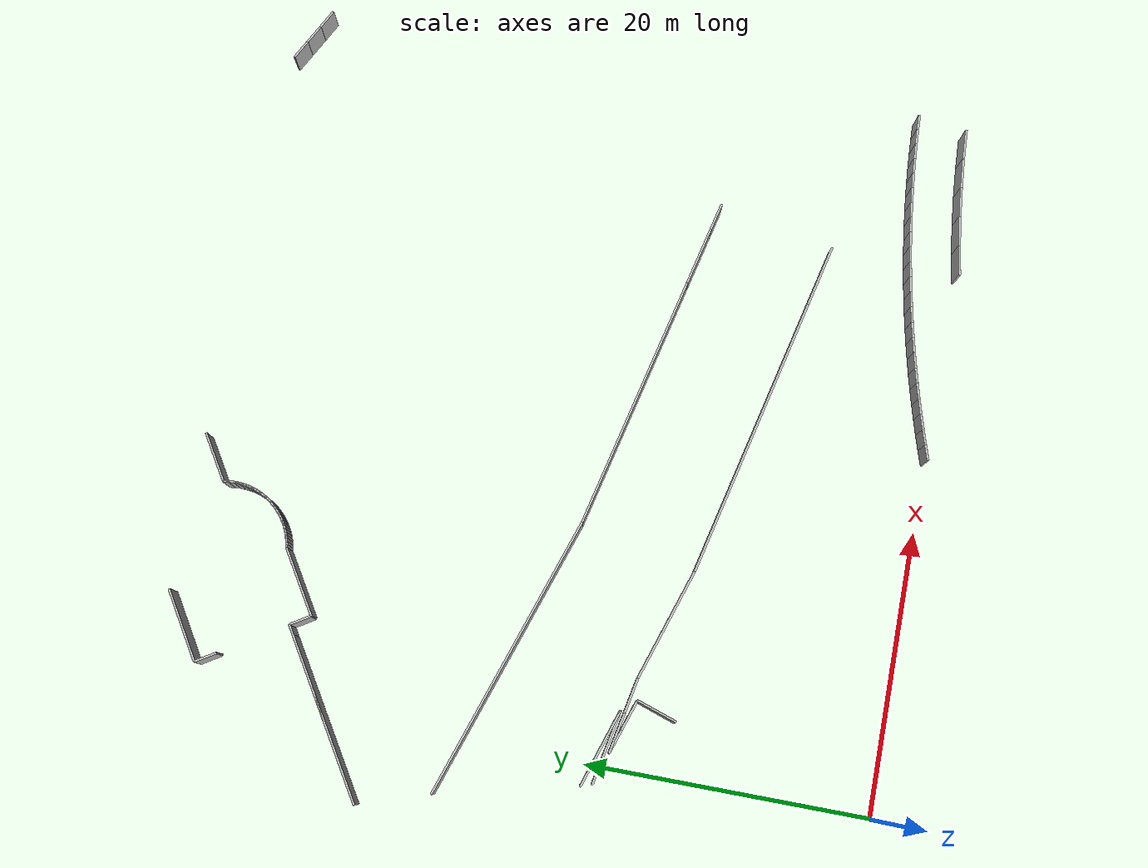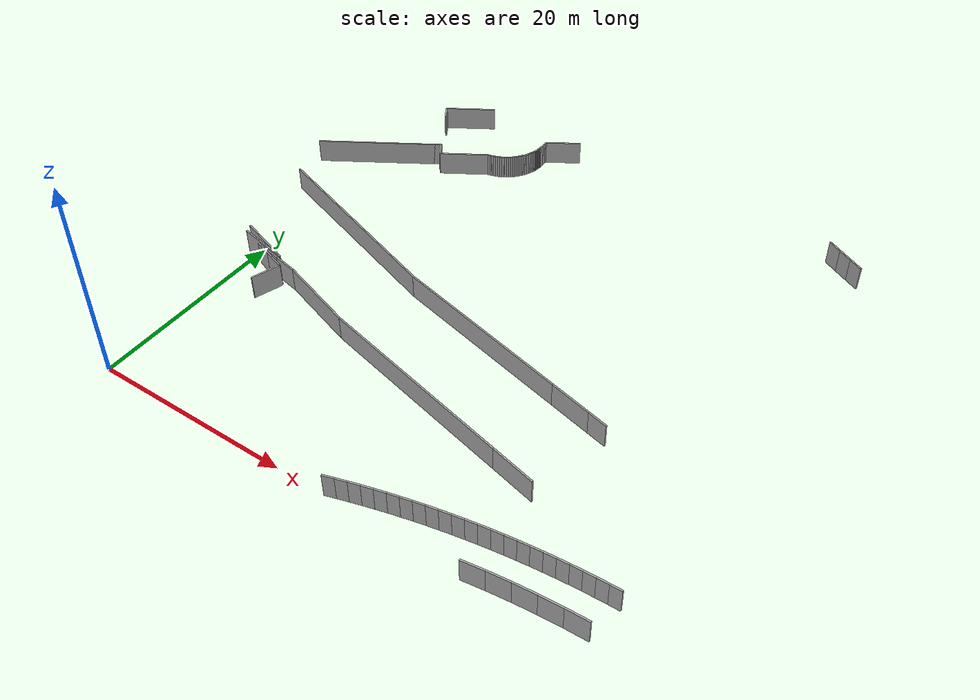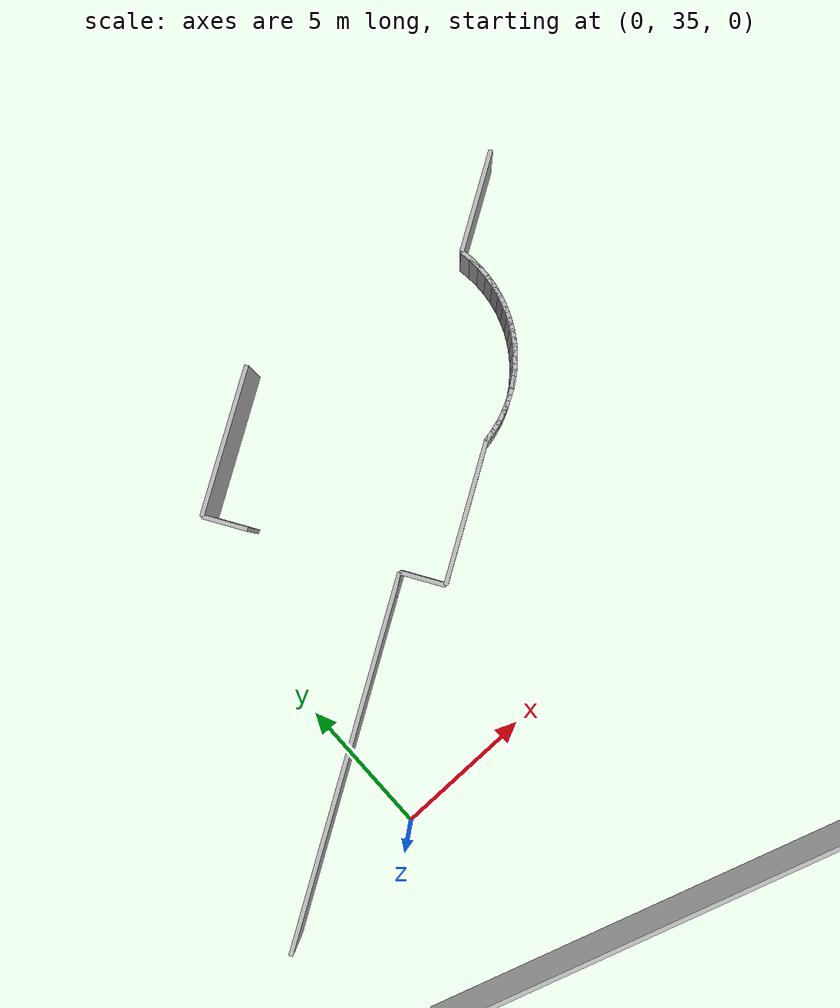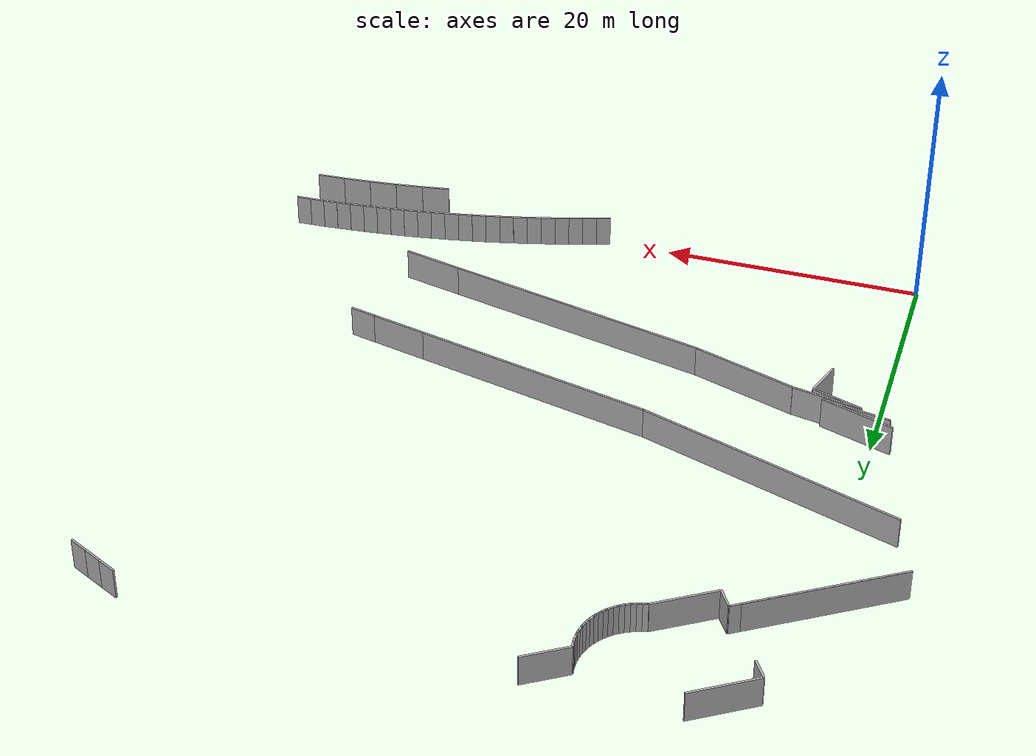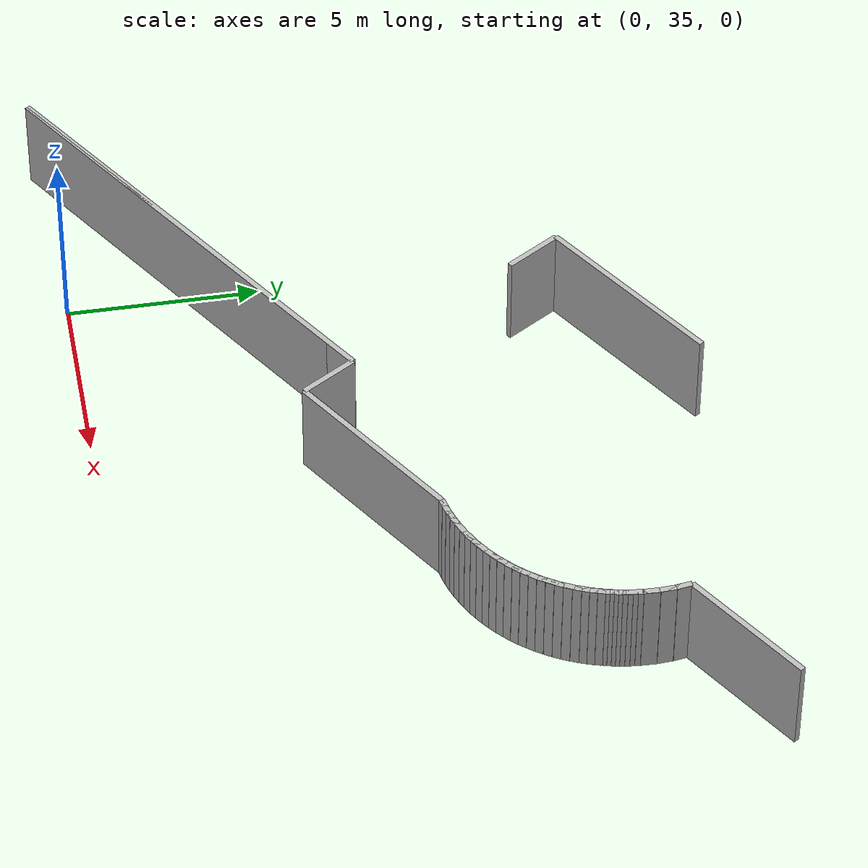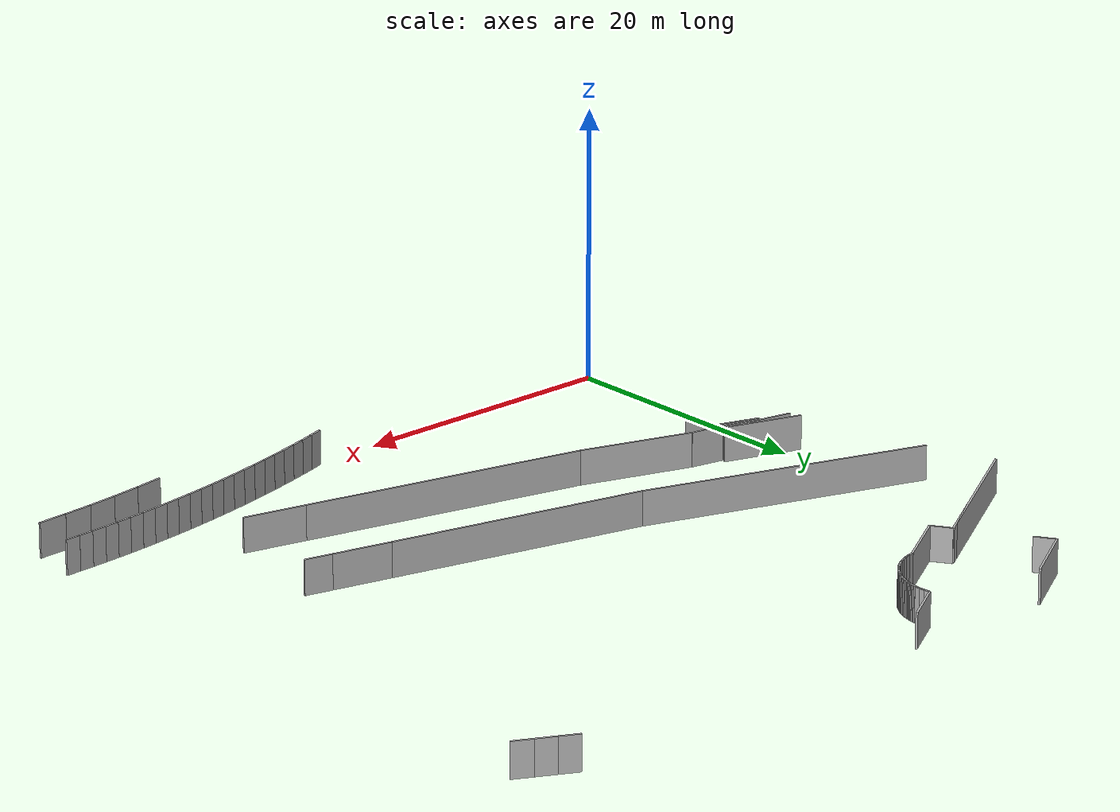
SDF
<sdf version="1.6">
 <model name="sps_1305">
  <static>1</static>
  <allow_auto_disable>0</allow_auto_disable>
  <link name="Wall187">
   <collision name="collision"><geometry><box><size>5.337 0.15 2.5</size></box></geometry></collision>
   <visual name="visual">
    <geometry><box><size>5.337 0.15 2.5</size></box></geometry>
    <transparency>0.0</transparency>
   </visual>
   <pose>1.42776 18.6879 1.25 0 0 -0.19276</pose>
  </link>
  <link name="Wall188">
   <collision name="collision"><geometry><box><size>5.80805 0.15 2.5</size></box></geometry></collision>
   <visual name="visual">
    <geometry><box><size>5.80805 0.15 2.5</size></box></geometry>
    <transparency>0.0</transparency>
   </visual>
   <pose>1.28585 19.0769 1.25 0 0 -0.315167</pose>
  </link>
  <link name="Wall343">
   <collision name="collision"><geometry><box><size>3.00012 0.15 2.5</size></box></geometry></collision>
   <visual name="visual">
    <geometry><box><size>3.00012 0.15 2.5</size></box></geometry>
    <transparency>0.0</transparency>
   </visual>
   <pose>4.43886 15.7577 1.25 0 0 -1.89019</pose>
  </link>
  <link name="Wall344">
   <collision name="collision"><geometry><box><size>1.78351 0.15 2.5</size></box></geometry></collision>
   <visual name="visual">
    <geometry><box><size>1.78351 0.15 2.5</size></box></geometry>
    <transparency>0.0</transparency>
   </visual>
   <pose>1.91195 18.173 1.25 0 0 -0.319281</pose>
  </link>
  <link name="Wall345">
   <collision name="collision"><geometry><box><size>2.26574 0.15 2.5</size></box></geometry></collision>
   <visual name="visual">
    <geometry><box><size>2.26574 0.15 2.5</size></box></geometry>
    <transparency>0.0</transparency>
   </visual>
   <pose>3.83426 17.5375 1.25 0 0 -0.319281</pose>
  </link>
  <link name="Wall425">
   <collision name="collision"><geometry><box><size>2.92208 0.15 2.5</size></box></geometry></collision>
   <visual name="visual">
    <geometry><box><size>2.92208 0.15 2.5</size></box></geometry>
    <transparency>0.0</transparency>
   </visual>
   <pose>2.49924 18.173 1.25 0 0 -0.192773</pose>
  </link>
  <link name="Wall426">
   <collision name="collision"><geometry><box><size>2.49485 0.15 2.5</size></box></geometry></collision>
   <visual name="visual">
    <geometry><box><size>2.49485 0.15 2.5</size></box></geometry>
    <transparency>0.0</transparency>
   </visual>
   <pose>5.15754 17.6541 1.25 0 0 -0.192773</pose>
  </link>
  <link name="Wall517">
   <collision name="collision"><geometry><box><size>13.0031 0.15 2.5</size></box></geometry></collision>
   <visual name="visual">
    <geometry><box><size>13.0031 0.15 2.5</size></box></geometry>
    <transparency>0.0</transparency>
   </visual>
   <pose>0.0686563 38.1576 1.25 0 0 -2.58425</pose>
  </link>
  <link name="Wall518">
   <collision name="collision"><geometry><box><size>21.0684 0.15 2.5</size></box></geometry></collision>
   <visual name="visual">
    <geometry><box><size>21.0684 0.15 2.5</size></box></geometry>
    <transparency>0.0</transparency>
   </visual>
   <pose>6.20898 26.4408 1.25 0 -0 2.82071</pose>
  </link>
  <link name="Wall519">
   <collision name="collision"><geometry><box><size>20.7242 0.15 2.5</size></box></geometry></collision>
   <visual name="visual">
    <geometry><box><size>20.7242 0.15 2.5</size></box></geometry>
    <transparency>0.0</transparency>
   </visual>
   <pose>24.3761 12.4944 1.25 0 0 -0.22823</pose>
  </link>
  <link name="Wall520">
   <collision name="collision"><geometry><box><size>4.60319 0.15 2.5</size></box></geometry></collision>
   <visual name="visual">
    <geometry><box><size>4.60319 0.15 2.5</size></box></geometry>
    <transparency>0.0</transparency>
   </visual>
   <pose>36.7114 9.62922 1.25 0 0 -0.22823</pose>
  </link>
  <link name="Wall598">
   <collision name="collision"><geometry><box><size>8.31023 0.15 2.5</size></box></geometry></collision>
   <visual name="visual">
    <geometry><box><size>8.31023 0.15 2.5</size></box></geometry>
    <transparency>0.0</transparency>
   </visual>
   <pose>10.3323 16.127 1.25 0 0 -0.315201</pose>
  </link>
  <link name="Wall602">
   <collision name="collision"><geometry><box><size>2.02963 0.15 2.5</size></box></geometry></collision>
   <visual name="visual">
    <geometry><box><size>2.02963 0.15 2.5</size></box></geometry>
    <transparency>0.0</transparency>
   </visual>
   <pose>39.6792 17.6634 1.25 0 -0 2.91326</pose>
  </link>
  <link name="Wall603">
   <collision name="collision"><geometry><box><size>4.33377 0.15 2.5</size></box></geometry></collision>
   <visual name="visual">
    <geometry><box><size>4.33377 0.15 2.5</size></box></geometry>
    <transparency>0.0</transparency>
   </visual>
   <pose>36.5801 18.3836 1.25 0 -0 2.91326</pose>
  </link>
  <link name="Wall604">
   <collision name="collision"><geometry><box><size>18.7506 0.15 2.5</size></box></geometry></collision>
   <visual name="visual">
    <geometry><box><size>18.7506 0.15 2.5</size></box></geometry>
    <transparency>0.0</transparency>
   </visual>
   <pose>25.3375 20.9962 1.25 0 -0 2.91326</pose>
  </link>
  <link name="Wall1678">
   <collision name="collision"><geometry><box><size>1.11043 0.15 2.5</size></box></geometry></collision>
   <visual name="visual">
    <geometry><box><size>1.11043 0.15 2.5</size></box></geometry>
    <transparency>0.0</transparency>
   </visual>
   <pose>25.4339 0.295699 1.25 0 -0 0.308558</pose>
  </link>
  <link name="Wall1679">
   <collision name="collision"><geometry><box><size>1.11057 0.15 2.5</size></box></geometry></collision>
   <visual name="visual">
    <geometry><box><size>1.11057 0.15 2.5</size></box></geometry>
    <transparency>0.0</transparency>
   </visual>
   <pose>26.494 0.626113 1.25 0 -0 0.295679</pose>
  </link>
  <link name="Wall1680">
   <collision name="collision"><geometry><box><size>1.11043 0.15 2.5</size></box></geometry></collision>
   <visual name="visual">
    <geometry><box><size>1.11043 0.15 2.5</size></box></geometry>
    <transparency>0.0</transparency>
   </visual>
   <pose>27.5583 0.943007 1.25 0 -0 0.283102</pose>
  </link>
  <link name="Wall1681">
   <collision name="collision"><geometry><box><size>1.11052 0.15 2.5</size></box></geometry></collision>
   <visual name="visual">
    <geometry><box><size>1.11052 0.15 2.5</size></box></geometry>
    <transparency>0.0</transparency>
   </visual>
   <pose>28.6265 1.24638 1.25 0 -0 0.270335</pose>
  </link>
  <link name="Wall1682">
   <collision name="collision"><geometry><box><size>1.1104 0.15 2.5</size></box></geometry></collision>
   <visual name="visual">
    <geometry><box><size>1.1104 0.15 2.5</size></box></geometry>
    <transparency>0.0</transparency>
   </visual>
   <pose>29.6984 1.53639 1.25 0 -0 0.258124</pose>
  </link>
  <link name="Wall1683">
   <collision name="collision"><geometry><box><size>1.11048 0.15 2.5</size></box></geometry></collision>
   <visual name="visual">
    <geometry><box><size>1.11048 0.15 2.5</size></box></geometry>
    <transparency>0.0</transparency>
   </visual>
   <pose>30.7739 1.813 1.25 0 -0 0.245392</pose>
  </link>
  <link name="Wall1684">
   <collision name="collision"><geometry><box><size>1.11053 0.15 2.5</size></box></geometry></collision>
   <visual name="visual">
    <geometry><box><size>1.11053 0.15 2.5</size></box></geometry>
    <transparency>0.0</transparency>
   </visual>
   <pose>31.8527 2.076 1.25 0 -0 0.232822</pose>
  </link>
  <link name="Wall1685">
   <collision name="collision"><geometry><box><size>1.11057 0.15 2.5</size></box></geometry></collision>
   <visual name="visual">
    <geometry><box><size>1.11057 0.15 2.5</size></box></geometry>
    <transparency>0.0</transparency>
   </visual>
   <pose>32.9349 2.3253 1.25 0 -0 0.22001</pose>
  </link>
  <link name="Wall1686">
   <collision name="collision"><geometry><box><size>1.11039 0.15 2.5</size></box></geometry></collision>
   <visual name="visual">
    <geometry><box><size>1.11039 0.15 2.5</size></box></geometry>
    <transparency>0.0</transparency>
   </visual>
   <pose>34.0201 2.56077 1.25 0 -0 0.207335</pose>
  </link>
  <link name="Wall1687">
   <collision name="collision"><geometry><box><size>1.1104 0.15 2.5</size></box></geometry></collision>
   <visual name="visual">
    <geometry><box><size>1.1104 0.15 2.5</size></box></geometry>
    <transparency>0.0</transparency>
   </visual>
   <pose>35.1081 2.78248 1.25 0 -0 0.194711</pose>
  </link>
  <link name="Wall1688">
   <collision name="collision"><geometry><box><size>1.1106 0.15 2.5</size></box></geometry></collision>
   <visual name="visual">
    <geometry><box><size>1.1106 0.15 2.5</size></box></geometry>
    <transparency>0.0</transparency>
   </visual>
   <pose>36.199 2.99049 1.25 0 -0 0.182144</pose>
  </link>
  <link name="Wall1689">
   <collision name="collision"><geometry><box><size>1.1103 0.15 2.5</size></box></geometry></collision>
   <visual name="visual">
    <geometry><box><size>1.1103 0.15 2.5</size></box></geometry>
    <transparency>0.0</transparency>
   </visual>
   <pose>37.2923 3.1848 1.25 0 -0 0.169631</pose>
  </link>
  <link name="Wall1690">
   <collision name="collision"><geometry><box><size>1.11072 0.15 2.5</size></box></geometry></collision>
   <visual name="visual">
    <geometry><box><size>1.11072 0.15 2.5</size></box></geometry>
    <transparency>0.0</transparency>
   </visual>
   <pose>38.388 3.3654 1.25 0 -0 0.15709</pose>
  </link>
  <link name="Wall1691">
   <collision name="collision"><geometry><box><size>1.11053 0.15 2.5</size></box></geometry></collision>
   <visual name="visual">
    <geometry><box><size>1.11053 0.15 2.5</size></box></geometry>
    <transparency>0.0</transparency>
   </visual>
   <pose>39.486 3.53209 1.25 0 -0 0.144221</pose>
  </link>
  <link name="Wall1692">
   <collision name="collision"><geometry><box><size>1.11054 0.15 2.5</size></box></geometry></collision>
   <visual name="visual">
    <geometry><box><size>1.11054 0.15 2.5</size></box></geometry>
    <transparency>0.0</transparency>
   </visual>
   <pose>40.586 3.68471 1.25 0 -0 0.131513</pose>
  </link>
  <link name="Wall1693">
   <collision name="collision"><geometry><box><size>1.11042 0.15 2.5</size></box></geometry></collision>
   <visual name="visual">
    <geometry><box><size>1.11042 0.15 2.5</size></box></geometry>
    <transparency>0.0</transparency>
   </visual>
   <pose>41.6877 3.82332 1.25 0 -0 0.118785</pose>
  </link>
  <link name="Wall1694">
   <collision name="collision"><geometry><box><size>1.11029 0.15 2.5</size></box></geometry></collision>
   <visual name="visual">
    <geometry><box><size>1.11029 0.15 2.5</size></box></geometry>
    <transparency>0.0</transparency>
   </visual>
   <pose>42.791 3.9481 1.25 0 -0 0.106462</pose>
  </link>
  <link name="Wall1695">
   <collision name="collision"><geometry><box><size>1.11049 0.15 2.5</size></box></geometry></collision>
   <visual name="visual">
    <geometry><box><size>1.11049 0.15 2.5</size></box></geometry>
    <transparency>0.0</transparency>
   </visual>
   <pose>43.8958 4.05919 1.25 0 -0 0.093959</pose>
  </link>
  <link name="Wall1696">
   <collision name="collision"><geometry><box><size>1.11048 0.15 2.5</size></box></geometry></collision>
   <visual name="visual">
    <geometry><box><size>1.11048 0.15 2.5</size></box></geometry>
    <transparency>0.0</transparency>
   </visual>
   <pose>45.002 4.15639 1.25 0 -0 0.0813246</pose>
  </link>
  <link name="Wall1697">
   <collision name="collision"><geometry><box><size>1.11063 0.15 2.5</size></box></geometry></collision>
   <visual name="visual">
    <geometry><box><size>1.11063 0.15 2.5</size></box></geometry>
    <transparency>0.0</transparency>
   </visual>
   <pose>46.1095 4.23949 1.25 0 -0 0.0684727</pose>
  </link>
  <link name="Wall1698">
   <collision name="collision"><geometry><box><size>1.1105 0.15 2.5</size></box></geometry></collision>
   <visual name="visual">
    <geometry><box><size>1.1105 0.15 2.5</size></box></geometry>
    <transparency>0.0</transparency>
   </visual>
   <pose>47.2179 4.30849 1.25 0 -0 0.0558705</pose>
  </link>
  <link name="Wall1699">
   <collision name="collision"><geometry><box><size>1.11046 0.15 2.5</size></box></geometry></collision>
   <visual name="visual">
    <geometry><box><size>1.11046 0.15 2.5</size></box></geometry>
    <transparency>0.0</transparency>
   </visual>
   <pose>48.327 4.36339 1.25 0 -0 0.0430498</pose>
  </link>
  <link name="Wall1700">
   <collision name="collision"><geometry><box><size>1.11051 0.15 2.5</size></box></geometry></collision>
   <visual name="visual">
    <geometry><box><size>1.11051 0.15 2.5</size></box></geometry>
    <transparency>0.0</transparency>
   </visual>
   <pose>49.4367 4.40428 1.25 0 -0 0.0306184</pose>
  </link>
  <link name="Wall1731">
   <collision name="collision"><geometry><box><size>2.18192 0.15 2.5</size></box></geometry></collision>
   <visual name="visual">
    <geometry><box><size>2.18192 0.15 2.5</size></box></geometry>
    <transparency>0.0</transparency>
   </visual>
   <pose>48.3574 0.855788 1.25 0 0 -3.09693</pose>
  </link>
  <link name="Wall1732">
   <collision name="collision"><geometry><box><size>2.18188 0.15 2.5</size></box></geometry></collision>
   <visual name="visual">
    <geometry><box><size>2.18188 0.15 2.5</size></box></geometry>
    <transparency>0.0</transparency>
   </visual>
   <pose>46.1793 0.730178 1.25 0 0 -3.07104</pose>
  </link>
  <link name="Wall1733">
   <collision name="collision"><geometry><box><size>2.18212 0.15 2.5</size></box></geometry></collision>
   <visual name="visual">
    <geometry><box><size>2.18212 0.15 2.5</size></box></geometry>
    <transparency>0.0</transparency>
   </visual>
   <pose>44.005 0.548293 1.25 0 0 -3.04522</pose>
  </link>
  <link name="Wall1734">
   <collision name="collision"><geometry><box><size>2.18186 0.15 2.5</size></box></geometry></collision>
   <visual name="visual">
    <geometry><box><size>2.18186 0.15 2.5</size></box></geometry>
    <transparency>0.0</transparency>
   </visual>
   <pose>41.8362 0.310317 1.25 0 0 -3.01938</pose>
  </link>
  <link name="Wall1735">
   <collision name="collision"><geometry><box><size>2.18185 0.15 2.5</size></box></geometry></collision>
   <visual name="visual">
    <geometry><box><size>2.18185 0.15 2.5</size></box></geometry>
    <transparency>0.0</transparency>
   </visual>
   <pose>39.6745 0.0163106 1.25 0 0 -2.99346</pose>
  </link>
  <link name="Wall2435">
   <collision name="collision"><geometry><box><size>3.66863 0.15 2.5</size></box></geometry></collision>
   <visual name="visual">
    <geometry><box><size>3.66863 0.15 2.5</size></box></geometry>
    <transparency>0.0</transparency>
   </visual>
   <pose>16.025 49.2194 1.25 0 0 -2.58446</pose>
  </link>
  <link name="Wall2436">
   <collision name="collision"><geometry><box><size>0.397523 0.15 2.5</size></box></geometry></collision>
   <visual name="visual">
    <geometry><box><size>0.397523 0.15 2.5</size></box></geometry>
    <transparency>0.0</transparency>
   </visual>
   <pose>14.4961 48.0527 1.25 0 0 -1.42938</pose>
  </link>
  <link name="Wall2437">
   <collision name="collision"><geometry><box><size>0.397598 0.15 2.5</size></box></geometry></collision>
   <visual name="visual">
    <geometry><box><size>0.397598 0.15 2.5</size></box></geometry>
    <transparency>0.0</transparency>
   </visual>
   <pose>14.5347 47.6574 1.25 0 0 -1.5175</pose>
  </link>
  <link name="Wall2438">
   <collision name="collision"><geometry><box><size>0.397633 0.15 2.5</size></box></geometry></collision>
   <visual name="visual">
    <geometry><box><size>0.397633 0.15 2.5</size></box></geometry>
    <transparency>0.0</transparency>
   </visual>
   <pose>14.5384 47.2602 1.25 0 0 -1.60503</pose>
  </link>
  <link name="Wall2439">
   <collision name="collision"><geometry><box><size>0.132317 0.15 2.5</size></box></geometry></collision>
   <visual name="visual">
    <geometry><box><size>0.132317 0.15 2.5</size></box></geometry>
    <transparency>0.0</transparency>
   </visual>
   <pose>14.5257 46.9956 1.25 0 0 -1.66133</pose>
  </link>
  <link name="Wall2440">
   <collision name="collision"><geometry><box><size>0.119027 0.15 2.5</size></box></geometry></collision>
   <visual name="visual">
    <geometry><box><size>0.119027 0.15 2.5</size></box></geometry>
    <transparency>0.0</transparency>
   </visual>
   <pose>14.5128 46.8706 1.25 0 0 -1.68695</pose>
  </link>
  <link name="Wall2441">
   <collision name="collision"><geometry><box><size>0.118755 0.15 2.5</size></box></geometry></collision>
   <visual name="visual">
    <geometry><box><size>0.118755 0.15 2.5</size></box></geometry>
    <transparency>0.0</transparency>
   </visual>
   <pose>14.4975 46.7527 1.25 0 0 -1.71313</pose>
  </link>
  <link name="Wall2442">
   <collision name="collision"><geometry><box><size>0.118976 0.15 2.5</size></box></geometry></collision>
   <visual name="visual">
    <geometry><box><size>0.118976 0.15 2.5</size></box></geometry>
    <transparency>0.0</transparency>
   </visual>
   <pose>14.4789 46.6353 1.25 0 0 -1.74143</pose>
  </link>
  <link name="Wall2443">
   <collision name="collision"><geometry><box><size>0.101314 0.15 2.5</size></box></geometry></collision>
   <visual name="visual">
    <geometry><box><size>0.101314 0.15 2.5</size></box></geometry>
    <transparency>0.0</transparency>
   </visual>
   <pose>14.4589 46.527 1.25 0 0 -1.76725</pose>
  </link>
  <link name="Wall2444">
   <collision name="collision"><geometry><box><size>0.101369 0.15 2.5</size></box></geometry></collision>
   <visual name="visual">
    <geometry><box><size>0.101369 0.15 2.5</size></box></geometry>
    <transparency>0.0</transparency>
   </visual>
   <pose>14.4382 46.4278 1.25 0 0 -1.78744</pose>
  </link>
  <link name="Wall2445">
   <collision name="collision"><geometry><box><size>0.10127 0.15 2.5</size></box></geometry></collision>
   <visual name="visual">
    <geometry><box><size>0.10127 0.15 2.5</size></box></geometry>
    <transparency>0.0</transparency>
   </visual>
   <pose>14.4153 46.3291 1.25 0 0 -1.80993</pose>
  </link>
  <link name="Wall2446">
   <collision name="collision"><geometry><box><size>0.0993717 0.15 2.5</size></box></geometry></collision>
   <visual name="visual">
    <geometry><box><size>0.0993717 0.15 2.5</size></box></geometry>
    <transparency>0.0</transparency>
   </visual>
   <pose>14.3905 46.2319 1.25 0 0 -1.83172</pose>
  </link>
  <link name="Wall2447">
   <collision name="collision"><geometry><box><size>0.187153 0.15 2.5</size></box></geometry></collision>
   <visual name="visual">
    <geometry><box><size>0.187153 0.15 2.5</size></box></geometry>
    <transparency>0.0</transparency>
   </visual>
   <pose>14.3511 46.0942 1.25 0 0 -1.85882</pose>
  </link>
  <link name="Wall2448">
   <collision name="collision"><geometry><box><size>0.187264 0.15 2.5</size></box></geometry></collision>
   <visual name="visual">
    <geometry><box><size>0.187264 0.15 2.5</size></box></geometry>
    <transparency>0.0</transparency>
   </visual>
   <pose>14.2942 45.9159 1.25 0 0 -1.90038</pose>
  </link>
  <link name="Wall2449">
   <collision name="collision"><geometry><box><size>0.187253 0.15 2.5</size></box></geometry></collision>
   <visual name="visual">
    <geometry><box><size>0.187253 0.15 2.5</size></box></geometry>
    <transparency>0.0</transparency>
   </visual>
   <pose>14.2298 45.7401 1.25 0 0 -1.9438</pose>
  </link>
  <link name="Wall2450">
   <collision name="collision"><geometry><box><size>0.220347 0.15 2.5</size></box></geometry></collision>
   <visual name="visual">
    <geometry><box><size>0.220347 0.15 2.5</size></box></geometry>
    <transparency>0.0</transparency>
   </visual>
   <pose>14.151 45.5522 1.25 0 0 -1.98835</pose>
  </link>
  <link name="Wall2451">
   <collision name="collision"><geometry><box><size>0.220277 0.15 2.5</size></box></geometry></collision>
   <visual name="visual">
    <geometry><box><size>0.220277 0.15 2.5</size></box></geometry>
    <transparency>0.0</transparency>
   </visual>
   <pose>14.0568 45.3531 1.25 0 0 -2.03692</pose>
  </link>
  <link name="Wall2452">
   <collision name="collision"><geometry><box><size>0.220212 0.15 2.5</size></box></geometry></collision>
   <visual name="visual">
    <geometry><box><size>0.220212 0.15 2.5</size></box></geometry>
    <transparency>0.0</transparency>
   </visual>
   <pose>13.9531 45.1589 1.25 0 0 -2.08578</pose>
  </link>
  <link name="Wall2453">
   <collision name="collision"><geometry><box><size>0.220322 0.15 2.5</size></box></geometry></collision>
   <visual name="visual">
    <geometry><box><size>0.220322 0.15 2.5</size></box></geometry>
    <transparency>0.0</transparency>
   </visual>
   <pose>13.84 44.9699 1.25 0 0 -2.13359</pose>
  </link>
  <link name="Wall2454">
   <collision name="collision"><geometry><box><size>0.220249 0.15 2.5</size></box></geometry></collision>
   <visual name="visual">
    <geometry><box><size>0.220249 0.15 2.5</size></box></geometry>
    <transparency>0.0</transparency>
   </visual>
   <pose>13.718 44.7866 1.25 0 0 -2.18309</pose>
  </link>
  <link name="Wall2455">
   <collision name="collision"><geometry><box><size>0.220394 0.15 2.5</size></box></geometry></collision>
   <visual name="visual">
    <geometry><box><size>0.220394 0.15 2.5</size></box></geometry>
    <transparency>0.0</transparency>
   </visual>
   <pose>13.5871 44.6095 1.25 0 0 -2.23152</pose>
  </link>
  <link name="Wall2456">
   <collision name="collision"><geometry><box><size>0.220254 0.15 2.5</size></box></geometry></collision>
   <visual name="visual">
    <geometry><box><size>0.220254 0.15 2.5</size></box></geometry>
    <transparency>0.0</transparency>
   </visual>
   <pose>13.4478 44.4388 1.25 0 0 -2.27852</pose>
  </link>
  <link name="Wall2457">
   <collision name="collision"><geometry><box><size>0.220279 0.15 2.5</size></box></geometry></collision>
   <visual name="visual">
    <geometry><box><size>0.220279 0.15 2.5</size></box></geometry>
    <transparency>0.0</transparency>
   </visual>
   <pose>13.3006 44.2751 1.25 0 0 -2.32837</pose>
  </link>
  <link name="Wall2458">
   <collision name="collision"><geometry><box><size>0.22037 0.15 2.5</size></box></geometry></collision>
   <visual name="visual">
    <geometry><box><size>0.22037 0.15 2.5</size></box></geometry>
    <transparency>0.0</transparency>
   </visual>
   <pose>13.1454 44.1188 1.25 0 0 -2.37676</pose>
  </link>
  <link name="Wall2459">
   <collision name="collision"><geometry><box><size>0.220293 0.15 2.5</size></box></geometry></collision>
   <visual name="visual">
    <geometry><box><size>0.220293 0.15 2.5</size></box></geometry>
    <transparency>0.0</transparency>
   </visual>
   <pose>12.9828 43.9702 1.25 0 0 -2.4256</pose>
  </link>
  <link name="Wall2460">
   <collision name="collision"><geometry><box><size>0.220196 0.15 2.5</size></box></geometry></collision>
   <visual name="visual">
    <geometry><box><size>0.220196 0.15 2.5</size></box></geometry>
    <transparency>0.0</transparency>
   </visual>
   <pose>12.8133 43.8297 1.25 0 0 -2.47347</pose>
  </link>
  <link name="Wall2461">
   <collision name="collision"><geometry><box><size>0.220363 0.15 2.5</size></box></geometry></collision>
   <visual name="visual">
    <geometry><box><size>0.220363 0.15 2.5</size></box></geometry>
    <transparency>0.0</transparency>
   </visual>
   <pose>12.6371 43.6975 1.25 0 0 -2.52186</pose>
  </link>
  <link name="Wall2462">
   <collision name="collision"><geometry><box><size>0.220284 0.15 2.5</size></box></geometry></collision>
   <visual name="visual">
    <geometry><box><size>0.220284 0.15 2.5</size></box></geometry>
    <transparency>0.0</transparency>
   </visual>
   <pose>12.4548 43.574 1.25 0 0 -2.5708</pose>
  </link>
  <link name="Wall2463">
   <collision name="collision"><geometry><box><size>0.220438 0.15 2.5</size></box></geometry></collision>
   <visual name="visual">
    <geometry><box><size>0.220438 0.15 2.5</size></box></geometry>
    <transparency>0.0</transparency>
   </visual>
   <pose>12.2666 43.4595 1.25 0 0 -2.61922</pose>
  </link>
  <link name="Wall2464">
   <collision name="collision"><geometry><box><size>0.220126 0.15 2.5</size></box></geometry></collision>
   <visual name="visual">
    <geometry><box><size>0.220126 0.15 2.5</size></box></geometry>
    <transparency>0.0</transparency>
   </visual>
   <pose>12.0731 43.3542 1.25 0 0 -2.66703</pose>
  </link>
  <link name="Wall2465">
   <collision name="collision"><geometry><box><size>0.220464 0.15 2.5</size></box></geometry></collision>
   <visual name="visual">
    <geometry><box><size>0.220464 0.15 2.5</size></box></geometry>
    <transparency>0.0</transparency>
   </visual>
   <pose>11.8748 43.2584 1.25 0 0 -2.71609</pose>
  </link>
  <link name="Wall2466">
   <collision name="collision"><geometry><box><size>0.220209 0.15 2.5</size></box></geometry></collision>
   <visual name="visual">
    <geometry><box><size>0.220209 0.15 2.5</size></box></geometry>
    <transparency>0.0</transparency>
   </visual>
   <pose>11.672 43.1724 1.25 0 0 -2.76495</pose>
  </link>
  <link name="Wall2467">
   <collision name="collision"><geometry><box><size>0.22021 0.15 2.5</size></box></geometry></collision>
   <visual name="visual">
    <geometry><box><size>0.22021 0.15 2.5</size></box></geometry>
    <transparency>0.0</transparency>
   </visual>
   <pose>11.4654 43.0964 1.25 0 0 -2.81309</pose>
  </link>
  <link name="Wall2468">
   <collision name="collision"><geometry><box><size>0.220394 0.15 2.5</size></box></geometry></collision>
   <visual name="visual">
    <geometry><box><size>0.220394 0.15 2.5</size></box></geometry>
    <transparency>0.0</transparency>
   </visual>
   <pose>11.2553 43.0304 1.25 0 0 -2.86128</pose>
  </link>
  <link name="Wall2469">
   <collision name="collision"><geometry><box><size>0.220246 0.15 2.5</size></box></geometry></collision>
   <visual name="visual">
    <geometry><box><size>0.220246 0.15 2.5</size></box></geometry>
    <transparency>0.0</transparency>
   </visual>
   <pose>11.0423 42.9746 1.25 0 0 -2.90979</pose>
  </link>
  <link name="Wall2470">
   <collision name="collision"><geometry><box><size>0.220272 0.15 2.5</size></box></geometry></collision>
   <visual name="visual">
    <geometry><box><size>0.220272 0.15 2.5</size></box></geometry>
    <transparency>0.0</transparency>
   </visual>
   <pose>10.8268 42.9293 1.25 0 0 -2.95909</pose>
  </link>
  <link name="Wall2471">
   <collision name="collision"><geometry><box><size>5.0495 0.15 2.5</size></box></geometry></collision>
   <visual name="visual">
    <geometry><box><size>5.0495 0.15 2.5</size></box></geometry>
    <transparency>0.0</transparency>
   </visual>
   <pose>8.57555 41.5743 1.25 0 0 -2.58444</pose>
  </link>
  <link name="Wall2472">
   <collision name="collision"><geometry><box><size>1.59951 0.15 2.5</size></box></geometry></collision>
   <visual name="visual">
    <geometry><box><size>1.59951 0.15 2.5</size></box></geometry>
    <transparency>0.0</transparency>
   </visual>
   <pose>6.00945 40.9179 1.25 0 -0 2.12839</pose>
  </link>
  <link name="Wall2473">
   <collision name="collision"><geometry><box><size>13.0033 0.15 2.5</size></box></geometry></collision>
   <visual name="visual">
    <geometry><box><size>13.0033 0.15 2.5</size></box></geometry>
    <transparency>0.0</transparency>
   </visual>
   <pose>0.0686563 38.1574 1.25 0 0 -2.58422</pose>
  </link>
  <link name="Wall2476">
   <collision name="collision"><geometry><box><size>1.60099 0.15 2.5</size></box></geometry></collision>
   <visual name="visual">
    <geometry><box><size>1.60099 0.15 2.5</size></box></geometry>
    <transparency>0.0</transparency>
   </visual>
   <pose>2.36077 46.7741 1.25 0 -0 2.12799</pose>
  </link>
  <link name="Wall2477">
   <collision name="collision"><geometry><box><size>5.31967 0.15 2.5</size></box></geometry></collision>
   <visual name="visual">
    <geometry><box><size>5.31967 0.15 2.5</size></box></geometry>
    <transparency>0.0</transparency>
   </visual>
   <pose>4.19506 48.8599 1.25 0 -0 0.557134</pose>
  </link>
  <link name="Wall4751">
   <collision name="collision"><geometry><box><size>0.4031 0.15 2.5</size></box></geometry></collision>
   <visual name="visual">
    <geometry><box><size>0.4031 0.15 2.5</size></box></geometry>
    <transparency>0.0</transparency>
   </visual>
   <pose>14.4906 48.0463 1.25 0 0 -1.43104</pose>
  </link>
  <link name="Wall4752">
   <collision name="collision"><geometry><box><size>0.40329 0.15 2.5</size></box></geometry></collision>
   <visual name="visual">
    <geometry><box><size>0.40329 0.15 2.5</size></box></geometry>
    <transparency>0.0</transparency>
   </visual>
   <pose>14.5289 47.6453 1.25 0 0 -1.52007</pose>
  </link>
  <link name="Wall4753">
   <collision name="collision"><geometry><box><size>0.403295 0.15 2.5</size></box></geometry></collision>
   <visual name="visual">
    <geometry><box><size>0.403295 0.15 2.5</size></box></geometry>
    <transparency>0.0</transparency>
   </visual>
   <pose>14.5316 47.2424 1.25 0 0 -1.60803</pose>
  </link>
  <link name="Wall4754">
   <collision name="collision"><geometry><box><size>0.403189 0.15 2.5</size></box></geometry></collision>
   <visual name="visual">
    <geometry><box><size>0.403189 0.15 2.5</size></box></geometry>
    <transparency>0.0</transparency>
   </visual>
   <pose>14.4989 46.8409 1.25 0 0 -1.69617</pose>
  </link>
  <link name="Wall4755">
   <collision name="collision"><geometry><box><size>0.40322 0.15 2.5</size></box></geometry></collision>
   <visual name="visual">
    <geometry><box><size>0.40322 0.15 2.5</size></box></geometry>
    <transparency>0.0</transparency>
   </visual>
   <pose>14.4307 46.4439 1.25 0 0 -1.78526</pose>
  </link>
  <link name="Wall4756">
   <collision name="collision"><geometry><box><size>0.403276 0.15 2.5</size></box></geometry></collision>
   <visual name="visual">
    <geometry><box><size>0.403276 0.15 2.5</size></box></geometry>
    <transparency>0.0</transparency>
   </visual>
   <pose>14.3278 46.0544 1.25 0 0 -1.87292</pose>
  </link>
  <link name="Wall4757">
   <collision name="collision"><geometry><box><size>0.403192 0.15 2.5</size></box></geometry></collision>
   <visual name="visual">
    <geometry><box><size>0.403192 0.15 2.5</size></box></geometry>
    <transparency>0.0</transparency>
   </visual>
   <pose>14.1911 45.6755 1.25 0 0 -1.96154</pose>
  </link>
  <link name="Wall4758">
   <collision name="collision"><geometry><box><size>0.403426 0.15 2.5</size></box></geometry></collision>
   <visual name="visual">
    <geometry><box><size>0.403426 0.15 2.5</size></box></geometry>
    <transparency>0.0</transparency>
   </visual>
   <pose>14.0213 45.3101 1.25 0 0 -2.05007</pose>
  </link>
  <link name="Wall4759">
   <collision name="collision"><geometry><box><size>0.403106 0.15 2.5</size></box></geometry></collision>
   <visual name="visual">
    <geometry><box><size>0.403106 0.15 2.5</size></box></geometry>
    <transparency>0.0</transparency>
   </visual>
   <pose>13.8198 44.9612 1.25 0 0 -2.13864</pose>
  </link>
  <link name="Wall4760">
   <collision name="collision"><geometry><box><size>0.403278 0.15 2.5</size></box></geometry></collision>
   <visual name="visual">
    <geometry><box><size>0.403278 0.15 2.5</size></box></geometry>
    <transparency>0.0</transparency>
   </visual>
   <pose>13.5885 44.6315 1.25 0 0 -2.22677</pose>
  </link>
  <link name="Wall4761">
   <collision name="collision"><geometry><box><size>0.403402 0.15 2.5</size></box></geometry></collision>
   <visual name="visual">
    <geometry><box><size>0.403402 0.15 2.5</size></box></geometry>
    <transparency>0.0</transparency>
   </visual>
   <pose>13.3289 44.3233 1.25 0 0 -2.31478</pose>
  </link>
  <link name="Wall4762">
   <collision name="collision"><geometry><box><size>0.403078 0.15 2.5</size></box></geometry></collision>
   <visual name="visual">
    <geometry><box><size>0.403078 0.15 2.5</size></box></geometry>
    <transparency>0.0</transparency>
   </visual>
   <pose>13.0432 44.0393 1.25 0 0 -2.40365</pose>
  </link>
  <link name="Wall4763">
   <collision name="collision"><geometry><box><size>0.403401 0.15 2.5</size></box></geometry></collision>
   <visual name="visual">
    <geometry><box><size>0.403401 0.15 2.5</size></box></geometry>
    <transparency>0.0</transparency>
   </visual>
   <pose>12.7335 43.7817 1.25 0 0 -2.49195</pose>
  </link>
  <link name="Wall4764">
   <collision name="collision"><geometry><box><size>0.403065 0.15 2.5</size></box></geometry></collision>
   <visual name="visual">
    <geometry><box><size>0.403065 0.15 2.5</size></box></geometry>
    <transparency>0.0</transparency>
   </visual>
   <pose>12.4022 43.5524 1.25 0 0 -2.58014</pose>
  </link>
  <link name="Wall4765">
   <collision name="collision"><geometry><box><size>0.403229 0.15 2.5</size></box></geometry></collision>
   <visual name="visual">
    <geometry><box><size>0.403229 0.15 2.5</size></box></geometry>
    <transparency>0.0</transparency>
   </visual>
   <pose>12.0521 43.3533 1.25 0 0 -2.66887</pose>
  </link>
  <link name="Wall4766">
   <collision name="collision"><geometry><box><size>0.403265 0.15 2.5</size></box></geometry></collision>
   <visual name="visual">
    <geometry><box><size>0.403265 0.15 2.5</size></box></geometry>
    <transparency>0.0</transparency>
   </visual>
   <pose>11.6858 43.1858 1.25 0 0 -2.75681</pose>
  </link>
  <link name="Wall4767">
   <collision name="collision"><geometry><box><size>0.403333 0.15 2.5</size></box></geometry></collision>
   <visual name="visual">
    <geometry><box><size>0.403333 0.15 2.5</size></box></geometry>
    <transparency>0.0</transparency>
   </visual>
   <pose>11.306 43.0513 1.25 0 0 -2.84569</pose>
  </link>
  <link name="Wall4768">
   <collision name="collision"><geometry><box><size>0.403266 0.15 2.5</size></box></geometry></collision>
   <visual name="visual">
    <geometry><box><size>0.403266 0.15 2.5</size></box></geometry>
    <transparency>0.0</transparency>
   </visual>
   <pose>10.9158 42.9509 1.25 0 0 -2.93381</pose>
  </link>
  <link name="Wall8707">
   <collision name="collision"><geometry><box><size>1.49885 0.15 2.5</size></box></geometry></collision>
   <visual name="visual">
    <geometry><box><size>1.49885 0.15 2.5</size></box></geometry>
    <transparency>0.0</transparency>
   </visual>
   <pose>46.6767 49.7125 1.25 0 0 -0.477798</pose>
  </link>
  <link name="Wall8708">
   <collision name="collision"><geometry><box><size>1.49885 0.15 2.5</size></box></geometry></collision>
   <visual name="visual">
    <geometry><box><size>1.49885 0.15 2.5</size></box></geometry>
    <transparency>0.0</transparency>
   </visual>
   <pose>48.0083 49.0243 1.25 0 0 -0.476286</pose>
  </link>
  <link name="Wall8709">
   <collision name="collision"><geometry><box><size>1.49912 0.15 2.5</size></box></geometry></collision>
   <visual name="visual">
    <geometry><box><size>1.49912 0.15 2.5</size></box></geometry>
    <transparency>0.0</transparency>
   </visual>
   <pose>49.341 48.3381 1.25 0 0 -0.474682</pose>
  </link>
 </model>
</sdf>
